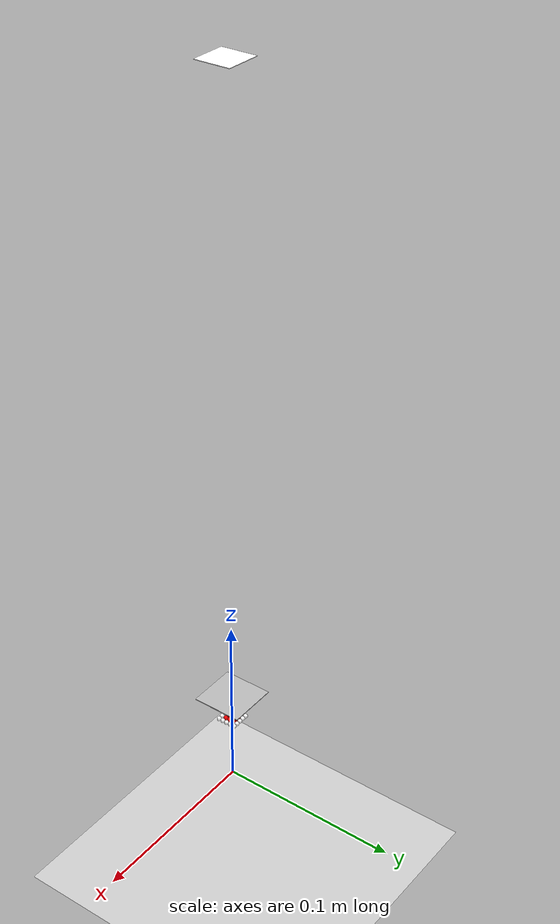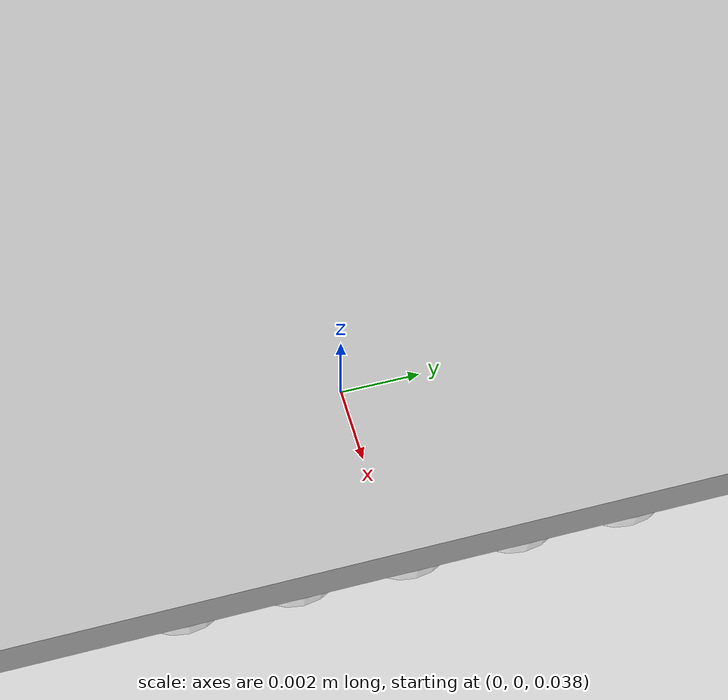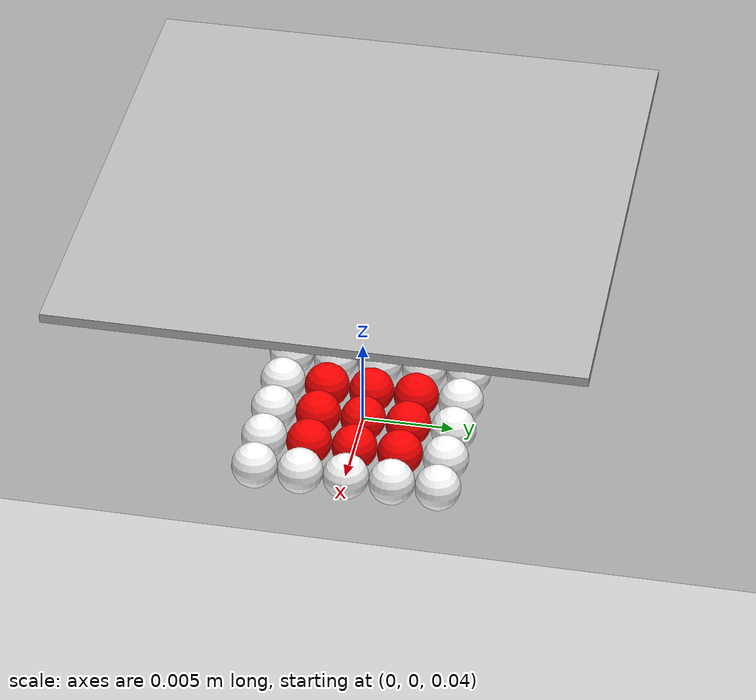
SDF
<?xml version='1.0'?>
<gazebo version='1.3'>
<world name='default'>

<include>
  <uri>model://ground_plane</uri>
</include>

<include>
  <uri>model://sun</uri>
</include>

<include>
  <uri>model://spring_array5</uri>
</include>

<physics type='ode'>
  <gravity>0.0 0.0 -9.8</gravity>
  <ode>
    <solver>
      <iters>150</iters>
    </solver>
    <constraints>
      <cfm>0.2</cfm>
    </constraints>
  </ode>
</physics>

<include>
  <uri>model://box</uri>
  <pose>0 0 0.055 0 0 0</pose>
</include>

<gui fullscreen='0'>
  <camera name='user_camera'>
    <pose>0.130675 -0.121126 0.095229 0 0.347643 2.35619</pose>
    <view_controller>orbit</view_controller>
  </camera>
</gui>

</world>
</gazebo>

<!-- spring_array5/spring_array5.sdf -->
<sdf version='1.5'>
  <model name='spring_array5'>
    <pose>0 0 0 0 -0 0</pose>
    <link name='plane'>
      <pose>0 0 0.4 0 -0 0</pose>
      <inertial>
        <mass>20</mass>
      </inertial>
      <collision name='collision'>
        <geometry>
          <box>
            <size>0.01875 0.01875 0.00025</size>
          </box>
        </geometry>
        <surface>
          <friction>
            <ode>
              <mu>0</mu>
              <mu2>0</mu2>
            </ode>
          </friction>
        </surface>
      </collision>
      <visual name='visual'>
        <geometry>
          <box>
            <size>0.01875 0.01875 0.00025</size>
          </box>
        </geometry>
        <material>
          <ambient>1 1 1 1</ambient>
          <diffuse>1 1 1 1</diffuse>
          <specular>0.1 0.1 0.1 1</specular>
          <emissive>0 0 0 0</emissive>
        </material>
      </visual>
    </link>
    <joint name='plane_joint' type='prismatic'>
      <parent>world</parent>
      <child>plane</child>
      <axis>
        <xyz>0 0 1</xyz>
        <limit>
          <lower>1e+16</lower>
          <upper>-1e+16</upper>
        </limit>
        <use_parent_model_frame>1</use_parent_model_frame>
      </axis>
    </joint>
    <link name='spring_1'>
      <pose>-0.005 0.005 0.04 0 -0 0</pose>
      <inertial>
        <mass>0.00235</mass>
      </inertial>
      <collision name='sphere_collision'>
        <geometry>
          <sphere>
            <radius>0.00125</radius>
          </sphere>
        </geometry>
        <surface>
          <friction>
            <ode>
              <mu>0</mu>
              <mu2>0</mu2>
            </ode>
          </friction>
        </surface>
      </collision>
      <visual name='visual'>
        <geometry>
          <sphere>
            <radius>0.00125</radius>
          </sphere>
        </geometry>
        <material>
          <ambient>1 1 1 1</ambient>
          <diffuse>1 1 1 1</diffuse>
          <specular>0.1 0.1 0.1 1</specular>
          <emissive>0 0 0 0</emissive>
        </material>
      </visual>
    </link>
    <joint name='spring_joint_1' type='prismatic'>
      <parent>plane</parent>
      <child>spring_1</child>
      <axis>
        <xyz>0 0 1</xyz>
        <limit>
          <lower>-1e+16</lower>
          <upper>1e+16</upper>
        </limit>
        <use_parent_model_frame>1</use_parent_model_frame>
      </axis>
    </joint>
    <link name='spring_2'>
      <pose>-0.0025 0.005 0.04 0 -0 0</pose>
      <inertial>
        <mass>0.00235</mass>
      </inertial>
      <collision name='sphere_collision'>
        <geometry>
          <sphere>
            <radius>0.00125</radius>
          </sphere>
        </geometry>
        <surface>
          <friction>
            <ode>
              <mu>0</mu>
              <mu2>0</mu2>
            </ode>
          </friction>
        </surface>
      </collision>
      <visual name='visual'>
        <geometry>
          <sphere>
            <radius>0.00125</radius>
          </sphere>
        </geometry>
        <material>
          <ambient>1 1 1 1</ambient>
          <diffuse>1 1 1 1</diffuse>
          <specular>0.1 0.1 0.1 1</specular>
          <emissive>0 0 0 0</emissive>
        </material>
      </visual>
    </link>
    <joint name='spring_joint_2' type='prismatic'>
      <parent>plane</parent>
      <child>spring_2</child>
      <axis>
        <xyz>0 0 1</xyz>
        <limit>
          <lower>-1e+16</lower>
          <upper>1e+16</upper>
        </limit>
        <use_parent_model_frame>1</use_parent_model_frame>
      </axis>
    </joint>
    <link name='spring_3'>
      <pose>0 0.005 0.04 0 -0 0</pose>
      <inertial>
        <mass>0.00235</mass>
      </inertial>
      <collision name='sphere_collision'>
        <geometry>
          <sphere>
            <radius>0.00125</radius>
          </sphere>
        </geometry>
        <surface>
          <friction>
            <ode>
              <mu>0</mu>
              <mu2>0</mu2>
            </ode>
          </friction>
        </surface>
      </collision>
      <visual name='visual'>
        <geometry>
          <sphere>
            <radius>0.00125</radius>
          </sphere>
        </geometry>
        <material>
          <ambient>1 1 1 1</ambient>
          <diffuse>1 1 1 1</diffuse>
          <specular>0.1 0.1 0.1 1</specular>
          <emissive>0 0 0 0</emissive>
        </material>
      </visual>
    </link>
    <joint name='spring_joint_3' type='prismatic'>
      <parent>plane</parent>
      <child>spring_3</child>
      <axis>
        <xyz>0 0 1</xyz>
        <limit>
          <lower>-1e+16</lower>
          <upper>1e+16</upper>
        </limit>
        <use_parent_model_frame>1</use_parent_model_frame>
      </axis>
    </joint>
    <link name='spring_4'>
      <pose>0.0025 0.005 0.04 0 -0 0</pose>
      <inertial>
        <mass>0.00235</mass>
      </inertial>
      <collision name='sphere_collision'>
        <geometry>
          <sphere>
            <radius>0.00125</radius>
          </sphere>
        </geometry>
        <surface>
          <friction>
            <ode>
              <mu>0</mu>
              <mu2>0</mu2>
            </ode>
          </friction>
        </surface>
      </collision>
      <visual name='visual'>
        <geometry>
          <sphere>
            <radius>0.00125</radius>
          </sphere>
        </geometry>
        <material>
          <ambient>1 1 1 1</ambient>
          <diffuse>1 1 1 1</diffuse>
          <specular>0.1 0.1 0.1 1</specular>
          <emissive>0 0 0 0</emissive>
        </material>
      </visual>
    </link>
    <joint name='spring_joint_4' type='prismatic'>
      <parent>plane</parent>
      <child>spring_4</child>
      <axis>
        <xyz>0 0 1</xyz>
        <limit>
          <lower>-1e+16</lower>
          <upper>1e+16</upper>
        </limit>
        <use_parent_model_frame>1</use_parent_model_frame>
      </axis>
    </joint>
    <link name='spring_5'>
      <pose>0.005 0.005 0.04 0 -0 0</pose>
      <inertial>
        <mass>0.00235</mass>
      </inertial>
      <collision name='sphere_collision'>
        <geometry>
          <sphere>
            <radius>0.00125</radius>
          </sphere>
        </geometry>
        <surface>
          <friction>
            <ode>
              <mu>0</mu>
              <mu2>0</mu2>
            </ode>
          </friction>
        </surface>
      </collision>
      <visual name='visual'>
        <geometry>
          <sphere>
            <radius>0.00125</radius>
          </sphere>
        </geometry>
        <material>
          <ambient>1 1 1 1</ambient>
          <diffuse>1 1 1 1</diffuse>
          <specular>0.1 0.1 0.1 1</specular>
          <emissive>0 0 0 0</emissive>
        </material>
      </visual>
    </link>
    <joint name='spring_joint_5' type='prismatic'>
      <parent>plane</parent>
      <child>spring_5</child>
      <axis>
        <xyz>0 0 1</xyz>
        <limit>
          <lower>-1e+16</lower>
          <upper>1e+16</upper>
        </limit>
        <use_parent_model_frame>1</use_parent_model_frame>
      </axis>
    </joint>
    <link name='spring_6'>
      <pose>-0.005 0.0025 0.04 0 -0 0</pose>
      <inertial>
        <mass>0.00235</mass>
      </inertial>
      <collision name='sphere_collision'>
        <geometry>
          <sphere>
            <radius>0.00125</radius>
          </sphere>
        </geometry>
        <surface>
          <friction>
            <ode>
              <mu>0</mu>
              <mu2>0</mu2>
            </ode>
          </friction>
        </surface>
      </collision>
      <visual name='visual'>
        <geometry>
          <sphere>
            <radius>0.00125</radius>
          </sphere>
        </geometry>
        <material>
          <ambient>1 1 1 1</ambient>
          <diffuse>1 1 1 1</diffuse>
          <specular>0.1 0.1 0.1 1</specular>
          <emissive>0 0 0 0</emissive>
        </material>
      </visual>
    </link>
    <joint name='spring_joint_6' type='prismatic'>
      <parent>plane</parent>
      <child>spring_6</child>
      <axis>
        <xyz>0 0 1</xyz>
        <limit>
          <lower>-1e+16</lower>
          <upper>1e+16</upper>
        </limit>
        <use_parent_model_frame>1</use_parent_model_frame>
      </axis>
    </joint>
    <link name='spring_7'>
      <pose>-0.0025 0.0025 0.04 0 -0 0</pose>
      <inertial>
        <mass>0.00235</mass>
      </inertial>
      <collision name='sphere_collision'>
        <geometry>
          <sphere>
            <radius>0.00125</radius>
          </sphere>
        </geometry>
        <surface>
          <friction>
            <ode>
              <mu>0</mu>
              <mu2>0</mu2>
            </ode>
          </friction>
        </surface>
      </collision>
      <visual name='visual'>
        <geometry>
          <sphere>
            <radius>0.00125</radius>
          </sphere>
        </geometry>
        <material>
          <ambient>1 0 0 1</ambient>
          <diffuse>1 0 0 1</diffuse>
          <specular>0.1 0.1 0.1 1</specular>
          <emissive>0 0 0 0</emissive>
        </material>
      </visual>
    </link>
    <joint name='spring_joint_7' type='prismatic'>
      <parent>plane</parent>
      <child>spring_7</child>
      <axis>
        <xyz>0 0 1</xyz>
        <limit>
          <lower>-1e+16</lower>
          <upper>1e+16</upper>
        </limit>
        <use_parent_model_frame>1</use_parent_model_frame>
      </axis>
    </joint>
    <link name='spring_8'>
      <pose>0 0.0025 0.04 0 -0 0</pose>
      <inertial>
        <mass>0.00235</mass>
      </inertial>
      <collision name='sphere_collision'>
        <geometry>
          <sphere>
            <radius>0.00125</radius>
          </sphere>
        </geometry>
        <surface>
          <friction>
            <ode>
              <mu>0</mu>
              <mu2>0</mu2>
            </ode>
          </friction>
        </surface>
      </collision>
      <visual name='visual'>
        <geometry>
          <sphere>
            <radius>0.00125</radius>
          </sphere>
        </geometry>
        <material>
          <ambient>1 0 0 1</ambient>
          <diffuse>1 0 0 1</diffuse>
          <specular>0.1 0.1 0.1 1</specular>
          <emissive>0 0 0 0</emissive>
        </material>
      </visual>
    </link>
    <joint name='spring_joint_8' type='prismatic'>
      <parent>plane</parent>
      <child>spring_8</child>
      <axis>
        <xyz>0 0 1</xyz>
        <limit>
          <lower>-1e+16</lower>
          <upper>1e+16</upper>
        </limit>
        <use_parent_model_frame>1</use_parent_model_frame>
      </axis>
    </joint>
    <link name='spring_9'>
      <pose>0.0025 0.0025 0.04 0 -0 0</pose>
      <inertial>
        <mass>0.00235</mass>
      </inertial>
      <collision name='sphere_collision'>
        <geometry>
          <sphere>
            <radius>0.00125</radius>
          </sphere>
        </geometry>
        <surface>
          <friction>
            <ode>
              <mu>0</mu>
              <mu2>0</mu2>
            </ode>
          </friction>
        </surface>
      </collision>
      <visual name='visual'>
        <geometry>
          <sphere>
            <radius>0.00125</radius>
          </sphere>
        </geometry>
        <material>
          <ambient>1 0 0 1</ambient>
          <diffuse>1 0 0 1</diffuse>
          <specular>0.1 0.1 0.1 1</specular>
          <emissive>0 0 0 0</emissive>
        </material>
      </visual>
    </link>
    <joint name='spring_joint_9' type='prismatic'>
      <parent>plane</parent>
      <child>spring_9</child>
      <axis>
        <xyz>0 0 1</xyz>
        <limit>
          <lower>-1e+16</lower>
          <upper>1e+16</upper>
        </limit>
        <use_parent_model_frame>1</use_parent_model_frame>
      </axis>
    </joint>
    <link name='spring_10'>
      <pose>0.005 0.0025 0.04 0 -0 0</pose>
      <inertial>
        <mass>0.00235</mass>
      </inertial>
      <collision name='sphere_collision'>
        <geometry>
          <sphere>
            <radius>0.00125</radius>
          </sphere>
        </geometry>
        <surface>
          <friction>
            <ode>
              <mu>0</mu>
              <mu2>0</mu2>
            </ode>
          </friction>
        </surface>
      </collision>
      <visual name='visual'>
        <geometry>
          <sphere>
            <radius>0.00125</radius>
          </sphere>
        </geometry>
        <material>
          <ambient>1 1 1 1</ambient>
          <diffuse>1 1 1 1</diffuse>
          <specular>0.1 0.1 0.1 1</specular>
          <emissive>0 0 0 0</emissive>
        </material>
      </visual>
    </link>
    <joint name='spring_joint_10' type='prismatic'>
      <parent>plane</parent>
      <child>spring_10</child>
      <axis>
        <xyz>0 0 1</xyz>
        <limit>
          <lower>-1e+16</lower>
          <upper>1e+16</upper>
        </limit>
        <use_parent_model_frame>1</use_parent_model_frame>
      </axis>
    </joint>
    <link name='spring_11'>
      <pose>-0.005 0 0.04 0 -0 0</pose>
      <inertial>
        <mass>0.00235</mass>
      </inertial>
      <collision name='sphere_collision'>
        <geometry>
          <sphere>
            <radius>0.00125</radius>
          </sphere>
        </geometry>
        <surface>
          <friction>
            <ode>
              <mu>0</mu>
              <mu2>0</mu2>
            </ode>
          </friction>
        </surface>
      </collision>
      <visual name='visual'>
        <geometry>
          <sphere>
            <radius>0.00125</radius>
          </sphere>
        </geometry>
        <material>
          <ambient>1 1 1 1</ambient>
          <diffuse>1 1 1 1</diffuse>
          <specular>0.1 0.1 0.1 1</specular>
          <emissive>0 0 0 0</emissive>
        </material>
      </visual>
    </link>
    <joint name='spring_joint_11' type='prismatic'>
      <parent>plane</parent>
      <child>spring_11</child>
      <axis>
        <xyz>0 0 1</xyz>
        <limit>
          <lower>-1e+16</lower>
          <upper>1e+16</upper>
        </limit>
        <use_parent_model_frame>1</use_parent_model_frame>
      </axis>
    </joint>
    <link name='spring_12'>
      <pose>-0.0025 0 0.04 0 -0 0</pose>
      <inertial>
        <mass>0.00235</mass>
      </inertial>
      <collision name='sphere_collision'>
        <geometry>
          <sphere>
            <radius>0.00125</radius>
          </sphere>
        </geometry>
        <surface>
          <friction>
            <ode>
              <mu>0</mu>
              <mu2>0</mu2>
            </ode>
          </friction>
        </surface>
      </collision>
      <visual name='visual'>
        <geometry>
          <sphere>
            <radius>0.00125</radius>
          </sphere>
        </geometry>
        <material>
          <ambient>1 0 0 1</ambient>
          <diffuse>1 0 0 1</diffuse>
          <specular>0.1 0.1 0.1 1</specular>
          <emissive>0 0 0 0</emissive>
        </material>
      </visual>
    </link>
    <joint name='spring_joint_12' type='prismatic'>
      <parent>plane</parent>
      <child>spring_12</child>
      <axis>
        <xyz>0 0 1</xyz>
        <limit>
          <lower>-1e+16</lower>
          <upper>1e+16</upper>
        </limit>
        <use_parent_model_frame>1</use_parent_model_frame>
      </axis>
    </joint>
    <link name='spring_13'>
      <pose>0 0 0.04 0 -0 0</pose>
      <inertial>
        <mass>0.00235</mass>
      </inertial>
      <collision name='sphere_collision'>
        <geometry>
          <sphere>
            <radius>0.00125</radius>
          </sphere>
        </geometry>
        <surface>
          <friction>
            <ode>
              <mu>0</mu>
              <mu2>0</mu2>
            </ode>
          </friction>
        </surface>
      </collision>
      <visual name='visual'>
        <geometry>
          <sphere>
            <radius>0.00125</radius>
          </sphere>
        </geometry>
        <material>
          <ambient>1 0 0 1</ambient>
          <diffuse>1 0 0 1</diffuse>
          <specular>0.1 0.1 0.1 1</specular>
          <emissive>0 0 0 0</emissive>
        </material>
      </visual>
    </link>
    <joint name='spring_joint_13' type='prismatic'>
      <parent>plane</parent>
      <child>spring_13</child>
      <axis>
        <xyz>0 0 1</xyz>
        <limit>
          <lower>-1e+16</lower>
          <upper>1e+16</upper>
        </limit>
        <use_parent_model_frame>1</use_parent_model_frame>
      </axis>
    </joint>
    <link name='spring_14'>
      <pose>0.0025 0 0.04 0 -0 0</pose>
      <inertial>
        <mass>0.00235</mass>
      </inertial>
      <collision name='sphere_collision'>
        <geometry>
          <sphere>
            <radius>0.00125</radius>
          </sphere>
        </geometry>
        <surface>
          <friction>
            <ode>
              <mu>0</mu>
              <mu2>0</mu2>
            </ode>
          </friction>
        </surface>
      </collision>
      <visual name='visual'>
        <geometry>
          <sphere>
            <radius>0.00125</radius>
          </sphere>
        </geometry>
        <material>
          <ambient>1 0 0 1</ambient>
          <diffuse>1 0 0 1</diffuse>
          <specular>0.1 0.1 0.1 1</specular>
          <emissive>0 0 0 0</emissive>
        </material>
      </visual>
    </link>
    <joint name='spring_joint_14' type='prismatic'>
      <parent>plane</parent>
      <child>spring_14</child>
      <axis>
        <xyz>0 0 1</xyz>
        <limit>
          <lower>-1e+16</lower>
          <upper>1e+16</upper>
        </limit>
        <use_parent_model_frame>1</use_parent_model_frame>
      </axis>
    </joint>
    <link name='spring_15'>
      <pose>0.005 0 0.04 0 -0 0</pose>
      <inertial>
        <mass>0.00235</mass>
      </inertial>
      <collision name='sphere_collision'>
        <geometry>
          <sphere>
            <radius>0.00125</radius>
          </sphere>
        </geometry>
        <surface>
          <friction>
            <ode>
              <mu>0</mu>
              <mu2>0</mu2>
            </ode>
          </friction>
        </surface>
      </collision>
      <visual name='visual'>
        <geometry>
          <sphere>
            <radius>0.00125</radius>
          </sphere>
        </geometry>
        <material>
          <ambient>1 1 1 1</ambient>
          <diffuse>1 1 1 1</diffuse>
          <specular>0.1 0.1 0.1 1</specular>
          <emissive>0 0 0 0</emissive>
        </material>
      </visual>
    </link>
    <joint name='spring_joint_15' type='prismatic'>
      <parent>plane</parent>
      <child>spring_15</child>
      <axis>
        <xyz>0 0 1</xyz>
        <limit>
          <lower>-1e+16</lower>
          <upper>1e+16</upper>
        </limit>
        <use_parent_model_frame>1</use_parent_model_frame>
      </axis>
    </joint>
    <link name='spring_16'>
      <pose>-0.005 -0.0025 0.04 0 -0 0</pose>
      <inertial>
        <mass>0.00235</mass>
      </inertial>
      <collision name='sphere_collision'>
        <geometry>
          <sphere>
            <radius>0.00125</radius>
          </sphere>
        </geometry>
        <surface>
          <friction>
            <ode>
              <mu>0</mu>
              <mu2>0</mu2>
            </ode>
          </friction>
        </surface>
      </collision>
      <visual name='visual'>
        <geometry>
          <sphere>
            <radius>0.00125</radius>
          </sphere>
        </geometry>
        <material>
          <ambient>1 1 1 1</ambient>
          <diffuse>1 1 1 1</diffuse>
          <specular>0.1 0.1 0.1 1</specular>
          <emissive>0 0 0 0</emissive>
        </material>
      </visual>
    </link>
    <joint name='spring_joint_16' type='prismatic'>
      <parent>plane</parent>
      <child>spring_16</child>
      <axis>
        <xyz>0 0 1</xyz>
        <limit>
          <lower>-1e+16</lower>
          <upper>1e+16</upper>
        </limit>
        <use_parent_model_frame>1</use_parent_model_frame>
      </axis>
    </joint>
    <link name='spring_17'>
      <pose>-0.0025 -0.0025 0.04 0 -0 0</pose>
      <inertial>
        <mass>0.00235</mass>
      </inertial>
      <collision name='sphere_collision'>
        <geometry>
          <sphere>
            <radius>0.00125</radius>
          </sphere>
        </geometry>
        <surface>
          <friction>
            <ode>
              <mu>0</mu>
              <mu2>0</mu2>
            </ode>
          </friction>
        </surface>
      </collision>
      <visual name='visual'>
        <geometry>
          <sphere>
            <radius>0.00125</radius>
          </sphere>
        </geometry>
        <material>
          <ambient>1 0 0 1</ambient>
          <diffuse>1 0 0 1</diffuse>
          <specular>0.1 0.1 0.1 1</specular>
          <emissive>0 0 0 0</emissive>
        </material>
      </visual>
    </link>
    <joint name='spring_joint_17' type='prismatic'>
      <parent>plane</parent>
      <child>spring_17</child>
      <axis>
        <xyz>0 0 1</xyz>
        <limit>
          <lower>-1e+16</lower>
          <upper>1e+16</upper>
        </limit>
        <use_parent_model_frame>1</use_parent_model_frame>
      </axis>
    </joint>
    <link name='spring_18'>
      <pose>0 -0.0025 0.04 0 -0 0</pose>
      <inertial>
        <mass>0.00235</mass>
      </inertial>
      <collision name='sphere_collision'>
        <geometry>
          <sphere>
            <radius>0.00125</radius>
          </sphere>
        </geometry>
        <surface>
          <friction>
            <ode>
              <mu>0</mu>
              <mu2>0</mu2>
            </ode>
          </friction>
        </surface>
      </collision>
      <visual name='visual'>
        <geometry>
          <sphere>
            <radius>0.00125</radius>
          </sphere>
        </geometry>
        <material>
          <ambient>1 0 0 1</ambient>
          <diffuse>1 0 0 1</diffuse>
          <specular>0.1 0.1 0.1 1</specular>
          <emissive>0 0 0 0</emissive>
        </material>
      </visual>
    </link>
    <joint name='spring_joint_18' type='prismatic'>
      <parent>plane</parent>
      <child>spring_18</child>
      <axis>
        <xyz>0 0 1</xyz>
        <limit>
          <lower>-1e+16</lower>
          <upper>1e+16</upper>
        </limit>
        <use_parent_model_frame>1</use_parent_model_frame>
      </axis>
    </joint>
    <link name='spring_19'>
      <pose>0.0025 -0.0025 0.04 0 -0 0</pose>
      <inertial>
        <mass>0.00235</mass>
      </inertial>
      <collision name='sphere_collision'>
        <geometry>
          <sphere>
            <radius>0.00125</radius>
          </sphere>
        </geometry>
        <surface>
          <friction>
            <ode>
              <mu>0</mu>
              <mu2>0</mu2>
            </ode>
          </friction>
        </surface>
      </collision>
      <visual name='visual'>
        <geometry>
          <sphere>
            <radius>0.00125</radius>
          </sphere>
        </geometry>
        <material>
          <ambient>1 0 0 1</ambient>
          <diffuse>1 0 0 1</diffuse>
          <specular>0.1 0.1 0.1 1</specular>
          <emissive>0 0 0 0</emissive>
        </material>
      </visual>
    </link>
    <joint name='spring_joint_19' type='prismatic'>
      <parent>plane</parent>
      <child>spring_19</child>
      <axis>
        <xyz>0 0 1</xyz>
        <limit>
          <lower>-1e+16</lower>
          <upper>1e+16</upper>
        </limit>
        <use_parent_model_frame>1</use_parent_model_frame>
      </axis>
    </joint>
    <link name='spring_20'>
      <pose>0.005 -0.0025 0.04 0 -0 0</pose>
      <inertial>
        <mass>0.00235</mass>
      </inertial>
      <collision name='sphere_collision'>
        <geometry>
          <sphere>
            <radius>0.00125</radius>
          </sphere>
        </geometry>
        <surface>
          <friction>
            <ode>
              <mu>0</mu>
              <mu2>0</mu2>
            </ode>
          </friction>
        </surface>
      </collision>
      <visual name='visual'>
        <geometry>
          <sphere>
            <radius>0.00125</radius>
          </sphere>
        </geometry>
        <material>
          <ambient>1 1 1 1</ambient>
          <diffuse>1 1 1 1</diffuse>
          <specular>0.1 0.1 0.1 1</specular>
          <emissive>0 0 0 0</emissive>
        </material>
      </visual>
    </link>
    <joint name='spring_joint_20' type='prismatic'>
      <parent>plane</parent>
      <child>spring_20</child>
      <axis>
        <xyz>0 0 1</xyz>
        <limit>
          <lower>-1e+16</lower>
          <upper>1e+16</upper>
        </limit>
        <use_parent_model_frame>1</use_parent_model_frame>
      </axis>
    </joint>
    <link name='spring_21'>
      <pose>-0.005 -0.005 0.04 0 -0 0</pose>
      <inertial>
        <mass>0.00235</mass>
      </inertial>
      <collision name='sphere_collision'>
        <geometry>
          <sphere>
            <radius>0.00125</radius>
          </sphere>
        </geometry>
        <surface>
          <friction>
            <ode>
              <mu>0</mu>
              <mu2>0</mu2>
            </ode>
          </friction>
        </surface>
      </collision>
      <visual name='visual'>
        <geometry>
          <sphere>
            <radius>0.00125</radius>
          </sphere>
        </geometry>
        <material>
          <ambient>1 1 1 1</ambient>
          <diffuse>1 1 1 1</diffuse>
          <specular>0.1 0.1 0.1 1</specular>
          <emissive>0 0 0 0</emissive>
        </material>
      </visual>
    </link>
    <joint name='spring_joint_21' type='prismatic'>
      <parent>plane</parent>
      <child>spring_21</child>
      <axis>
        <xyz>0 0 1</xyz>
        <limit>
          <lower>-1e+16</lower>
          <upper>1e+16</upper>
        </limit>
        <use_parent_model_frame>1</use_parent_model_frame>
      </axis>
    </joint>
    <link name='spring_22'>
      <pose>-0.0025 -0.005 0.04 0 -0 0</pose>
      <inertial>
        <mass>0.00235</mass>
      </inertial>
      <collision name='sphere_collision'>
        <geometry>
          <sphere>
            <radius>0.00125</radius>
          </sphere>
        </geometry>
        <surface>
          <friction>
            <ode>
              <mu>0</mu>
              <mu2>0</mu2>
            </ode>
          </friction>
        </surface>
      </collision>
      <visual name='visual'>
        <geometry>
          <sphere>
            <radius>0.00125</radius>
          </sphere>
        </geometry>
        <material>
          <ambient>1 1 1 1</ambient>
          <diffuse>1 1 1 1</diffuse>
          <specular>0.1 0.1 0.1 1</specular>
          <emissive>0 0 0 0</emissive>
        </material>
      </visual>
    </link>
    <joint name='spring_joint_22' type='prismatic'>
      <parent>plane</parent>
      <child>spring_22</child>
      <axis>
        <xyz>0 0 1</xyz>
        <limit>
          <lower>-1e+16</lower>
          <upper>1e+16</upper>
        </limit>
        <use_parent_model_frame>1</use_parent_model_frame>
      </axis>
    </joint>
    <link name='spring_23'>
      <pose>0 -0.005 0.04 0 -0 0</pose>
      <inertial>
        <mass>0.00235</mass>
      </inertial>
      <collision name='sphere_collision'>
        <geometry>
          <sphere>
            <radius>0.00125</radius>
          </sphere>
        </geometry>
        <surface>
          <friction>
            <ode>
              <mu>0</mu>
              <mu2>0</mu2>
            </ode>
          </friction>
        </surface>
      </collision>
      <visual name='visual'>
        <geometry>
          <sphere>
            <radius>0.00125</radius>
          </sphere>
        </geometry>
        <material>
          <ambient>1 1 1 1</ambient>
          <diffuse>1 1 1 1</diffuse>
          <specular>0.1 0.1 0.1 1</specular>
          <emissive>0 0 0 0</emissive>
        </material>
      </visual>
    </link>
    <joint name='spring_joint_23' type='prismatic'>
      <parent>plane</parent>
      <child>spring_23</child>
      <axis>
        <xyz>0 0 1</xyz>
        <limit>
          <lower>-1e+16</lower>
          <upper>1e+16</upper>
        </limit>
        <use_parent_model_frame>1</use_parent_model_frame>
      </axis>
    </joint>
    <link name='spring_24'>
      <pose>0.0025 -0.005 0.04 0 -0 0</pose>
      <inertial>
        <mass>0.00235</mass>
      </inertial>
      <collision name='sphere_collision'>
        <geometry>
          <sphere>
            <radius>0.00125</radius>
          </sphere>
        </geometry>
        <surface>
          <friction>
            <ode>
              <mu>0</mu>
              <mu2>0</mu2>
            </ode>
          </friction>
        </surface>
      </collision>
      <visual name='visual'>
        <geometry>
          <sphere>
            <radius>0.00125</radius>
          </sphere>
        </geometry>
        <material>
          <ambient>1 1 1 1</ambient>
          <diffuse>1 1 1 1</diffuse>
          <specular>0.1 0.1 0.1 1</specular>
          <emissive>0 0 0 0</emissive>
        </material>
      </visual>
    </link>
    <joint name='spring_joint_24' type='prismatic'>
      <parent>plane</parent>
      <child>spring_24</child>
      <axis>
        <xyz>0 0 1</xyz>
        <limit>
          <lower>-1e+16</lower>
          <upper>1e+16</upper>
        </limit>
        <use_parent_model_frame>1</use_parent_model_frame>
      </axis>
    </joint>
    <link name='spring_25'>
      <pose>0.005 -0.005 0.04 0 -0 0</pose>
      <inertial>
        <mass>0.00235</mass>
      </inertial>
      <collision name='sphere_collision'>
        <geometry>
          <sphere>
            <radius>0.00125</radius>
          </sphere>
        </geometry>
        <surface>
          <friction>
            <ode>
              <mu>0</mu>
              <mu2>0</mu2>
            </ode>
          </friction>
        </surface>
      </collision>
      <visual name='visual'>
        <geometry>
          <sphere>
            <radius>0.00125</radius>
          </sphere>
        </geometry>
        <material>
          <ambient>1 1 1 1</ambient>
          <diffuse>1 1 1 1</diffuse>
          <specular>0.1 0.1 0.1 1</specular>
          <emissive>0 0 0 0</emissive>
        </material>
      </visual>
    </link>
    <joint name='spring_joint_25' type='prismatic'>
      <parent>plane</parent>
      <child>spring_25</child>
      <axis>
        <xyz>0 0 1</xyz>
        <limit>
          <lower>-1e+16</lower>
          <upper>1e+16</upper>
        </limit>
        <use_parent_model_frame>1</use_parent_model_frame>
      </axis>
    </joint>
    <plugin name='skinsimTactileSensor' filename='libTactileSensorPlugin.so'>
      <file_name>spring_array5</file_name>
    </plugin>
    <plugin name='skinsimSkinJoint' filename='libSkinJointPlugin.so'>
      <file_name>spring_array5</file_name>
    </plugin>
    <plugin name='skinsimPlaneJoint' filename='libPlaneJoint.so'>
      <file_name>spring_array5</file_name>
    </plugin>
  </model>
</sdf>

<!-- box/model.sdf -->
<sdf version="1.4">
    <model name="box">
      <pose>0 0 0 0 0 0</pose>
      <link name="link">
        <pose>0 0 0.00025 0 0 0</pose>
        <inertial>
          <mass>0.05</mass>
        </inertial>

        <collision name="collision">
          <geometry>
            <box>
              <size>0.0275 0.0275 0.0005</size>
            </box>
          </geometry>
        </collision>

        <visual name="visual">
          <geometry>
            <box>
              <size>0.0275 0.0275 0.0005</size>
            </box>
          </geometry>
        </visual>
       </link>
      <joint name = "my_mass_joint" type="prismatic">
        <parent>world</parent>
          <child>link</child>
          <axis>
            <xyz>0 0 1</xyz>
          </axis>
      </joint>
      <plugin name="mass_joint" filename="libmass_joint.so" />
    </model>
</sdf>
